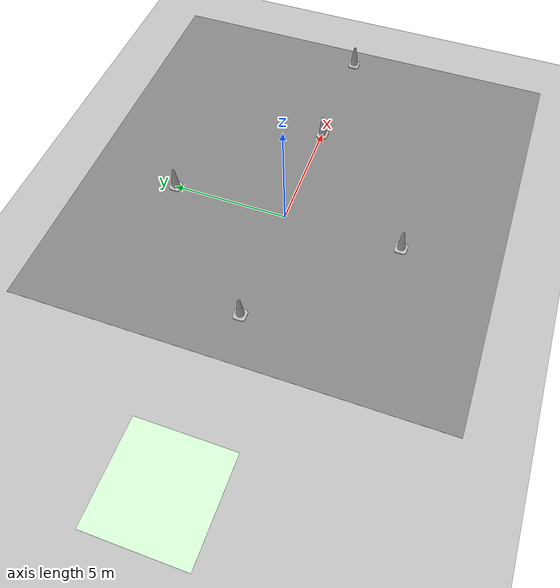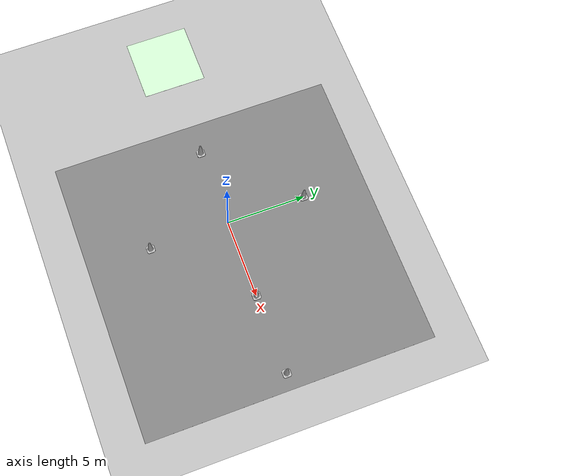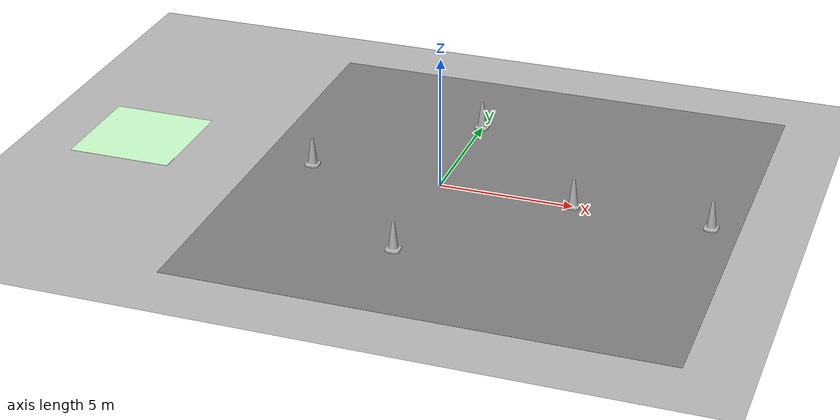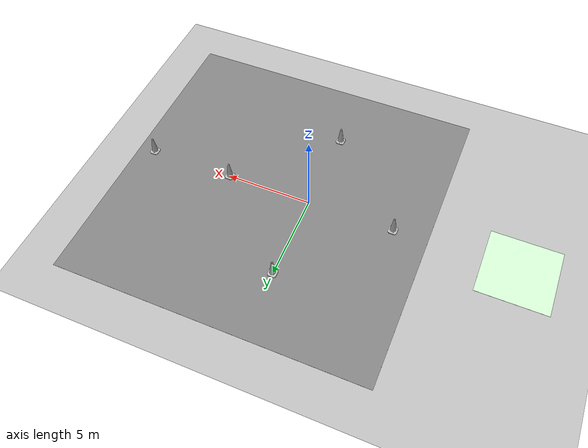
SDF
<?xml version="1.0"?>
<sdf version="1.5">
	<world name="default">
		<gui fullscreen='1'></gui>

		<!-- Beacons -->
		<include>
			<name>beacon1</name>
			<uri>model://construction_cone</uri>
			<pose>0 5 0 0 0 0</pose>
		</include>
		<include>
			<name>beacon2</name>
			<uri>model://construction_cone</uri>
			<pose>5 0 0 0 0 0</pose>
		</include>
		<include>
			<name>beacon3</name>
			<uri>model://construction_cone</uri>
			<pose>0 -5 0 0 0 0</pose>
		</include>
		<include>
			<name>beacon4</name>
			<uri>model://construction_cone</uri>
			<pose>-5 0 0 0 0 0</pose>
		</include>
		<include>
			<name>beacon5</name>
			<uri>model://construction_cone</uri>
			<pose>10 0 0 0 0 0</pose>
		</include>

		<!-- Slab -->
		<include>
			<uri>model://slab</uri>
		</include>

		<!-- Grass plane -->
		<include>
			<uri>model://grass_plane</uri>
		</include>

		<!-- JdeRobot Logo -->
		<include>
			<name>logo</name>
			<uri>model://logoJdeRobot</uri>
			<pose>-12.0 0.0 0.0 0.0 0.0 0.0</pose>
		</include>

		<scene>
            <shadows>0</shadows>
            <ambient>0.4 0.4 0.4 1.0</ambient>
            <background>0.7 0.7 0.7 1</background>
			<sky>
				<clouds>
					<speed>12</speed>
				</clouds>
			</sky>
		</scene>

		<!-- A global light source -->
		<include>
			<uri>model://sun</uri>
		</include>

		<!-- Only one ROS interface plugin is required per world, as any other plugin can connect a Gazebo
			topic to a ROS topic (or vise versa). -->
		<plugin name="ros_interface_plugin" filename="librotors_gazebo_ros_interface_plugin.so"/>

		<!-- Gazebo required specifications -->
		<physics name='default_physics' default='0' type='ode'>
			<gravity>0 0 -9.8066</gravity>
			<ode>
				<solver>
					<type>quick</type>
					<iters>10</iters>
					<sor>1.3</sor>
					<use_dynamic_moi_rescaling>0</use_dynamic_moi_rescaling>
				</solver>
				<constraints>
					<cfm>0</cfm>
					<erp>0.2</erp>
					<contact_max_correcting_vel>100</contact_max_correcting_vel>
					<contact_surface_layer>0.001</contact_surface_layer>
				</constraints>
			</ode>
			<max_step_size>0.004</max_step_size>
			<real_time_factor>1</real_time_factor>
			<real_time_update_rate>250</real_time_update_rate>
			<magnetic_field>6.0e-6 2.3e-5 -4.2e-5</magnetic_field>
		</physics>

	</world>
</sdf>

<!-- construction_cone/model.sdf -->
<sdf version="1.5">
  <model name="Construction Cone">
    <link name="link">
      <collision name="collision">
        <geometry>
          <mesh>
            <scale>10 10 10</scale>
            <uri>file://isr-testbed/construction_cone/meshes/construction_cone.dae</uri>
          </mesh>
        </geometry>
      </collision>
      <visual name="visual">
        <geometry>
          <mesh>
            <scale>10 10 10</scale>
            <uri>file://isr-testbed/construction_cone/meshes/construction_cone.dae</uri>
          </mesh>
        </geometry>
      </visual>
    </link>
  </model>
</sdf>

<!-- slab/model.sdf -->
<sdf version='1.3'>
  <model name="slab">
    <pose>2 0 0 0 0 0</pose>
    <static>true</static>
    <link name="link">
      <inertial>
        <mass>1.0</mass>
        <inertia>
          <ixx>0.0</ixx>
          <ixy>0.0</ixy>
          <ixz>0.0</ixz>
          <iyy>0.332</iyy>
          <iyz>0.0</iyz>
          <izz>0.332</izz>
        </inertia>
      </inertial>

      <collision name="collision">
        <geometry>
          <box>
            <size>18 18 0.01</size>
          </box>
        </geometry>
      </collision>

      <visual name="visual">
        <geometry>
          <box>
            <size>18 18 0.01</size>
          </box>
        </geometry>
        <material>
          <ambient>0.5 0.5 0.5 1</ambient>
          <diffuse>0.5 0.5 0.5 1</diffuse>
          <specular>0.1 0.1 0.1 1</specular>
        </material>
      </visual>

    </link>
  </model>
</sdf>

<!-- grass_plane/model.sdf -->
<sdf version="1.4">
  <model name="grass_plane">
    <static>true</static>
    <link name="link">
      <collision name="collision">
        <geometry>
          <plane>
            <normal>0 0 1</normal>
            <size>750 750</size>
          </plane>
        </geometry>
        <surface>
          <friction>
            <ode>
              <mu>0.5</mu>
              <mu2>.5</mu2>
            </ode>
          </friction>
        </surface>
      </collision>

      <visual name="visual_0">
        <pose>2 -5 0 0 0 0</pose>

        <cast_shadows>false</cast_shadows>
        <geometry>
          <mesh>
            <uri>model://grass_plane/meshes/grass_plane.dae</uri>
            <scale>3 3 1</scale>
          </mesh>
        </geometry>
      </visual>
    </link>
  </model>
</sdf>

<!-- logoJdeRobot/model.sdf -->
<sdf version="1.6">
  <model name="logoJdeRobot">
    <static>true</static>
    <link name="link">
      <collision name="collision">
        <geometry>
          <plane>
            <normal>0 0 1</normal>
            <size>1 1</size>
          </plane>
        </geometry>
        <surface>
          <friction>
            <ode>
              <mu>0.5</mu>
              <mu2>.5</mu2>
            </ode>
          </friction>
        </surface>
      </collision>

      <visual name="visual_0">
        <pose>0 0 0.1 0 0 0</pose>

        <cast_shadows>false</cast_shadows>
        <geometry>
          <plane>
            <normal>0 0 1</normal>
            <size>4 4</size>
          </plane>
        </geometry>
        <material>
          <ambient>0.8 1.0 0.8 1.0</ambient>
          <diffuse>0.8 1.0 0.8 1.0</diffuse>
          <specular>0.1 0.1 0.1 1.0</specular>
          <pbr>
            <metal>
              <albedo_map>
                model://logoJdeRobot/materials/textures/logoJdeRobot.png</albedo_map>
            </metal>
          </pbr>
        </material>
      </visual>
    </link>
  </model>
</sdf>
